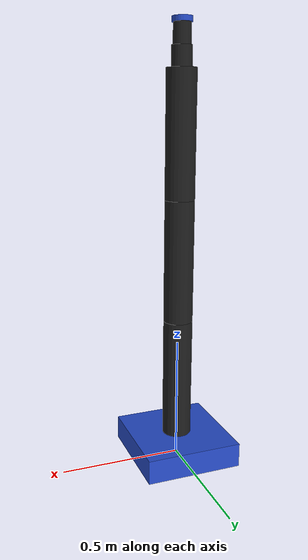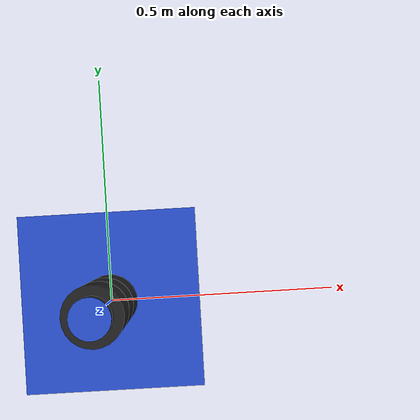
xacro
<?xml version="1.0"?>
<robot xmlns:xacro="http://www.ros.org/wiki/xacro">

    <link name="base_link">
        <visual>
            <geometry>
                <box size="0.4 0.4 0.1"/>
            </geometry>
            <origin xyz="0 0 0.05" rpy="0 0 0"/>
            <material name="blue"/>
        </visual>
        <collision>
            <geometry>
                <box size="0.4 0.4 0.1"/>
            </geometry>
            <origin xyz="0 0 0.05" rpy="0 0 0"/>
        </collision>
    </link>

    <joint name="shoulder_yaw_joint" type="revolute">
        <parent link="base_link"/>
        <child link="shoulder_link"/>
        <origin xyz="0 0 0.1" rpy="0 0 0"/>
        <axis xyz="0 0 1" />
        <limit effort="1000.0" velocity="1.0" lower="-3.14" upper="3.14"/>
    </joint>

    <link name="shoulder_link">
        <visual>
            <geometry>
                <cylinder length="0.5" radius="0.06"/>
            </geometry>
            <origin xyz="0 0 0.25" rpy="0 0 0"/>
            <material name="matte_black"/>
        </visual>
        <collision>
            <geometry>
                <cylinder length="0.5" radius="0.06"/>
            </geometry>
            <origin xyz="0 0 0.25" rpy="0 0 0"/>
        </collision>
    </link>

    <joint name="shoulder_pitch_joint" type="revolute">
        <parent link="shoulder_link"/>
        <child link="upper_arm_link"/>
        <origin xyz="0 0 0.5" rpy="0 0 0"/>
        <axis xyz="0 1 0" />
        <limit effort="1000.0" velocity="1.0" lower="-1.57" upper="1.57"/>
    </joint>

    <link name="upper_arm_link">
        <visual>
            <geometry>
                <cylinder length="0.5" radius="0.06"/>
            </geometry>
            <origin xyz="0 0 0.25" rpy="0 0 0"/>
            <material name="matte_black"/>
        </visual>
        <collision>
            <geometry>
                <cylinder length="0.5" radius="0.06"/>
            </geometry>
            <origin xyz="0 0 0.25" rpy="0 0 0"/>
        </collision>
    </link>

    <joint name="elbow_joint" type="revolute">
        <parent link="upper_arm_link"/>
        <child link="forearm_link"/>
        <origin xyz="0 0 0.5" rpy="0 0 0"/>
        <axis xyz="0 1 0" />
        <limit effort="1000.0" velocity="1.0" lower="-1.57" upper="1.57"/>
    </joint>

    <link name="forearm_link">
        <visual>
            <geometry>
                <cylinder length="0.5" radius="0.06"/>
            </geometry>
            <origin xyz="0 0 0.25" rpy="0 0 0"/>
            <material name="matte_black"/>
        </visual>
        <collision>
            <geometry>
                <cylinder length="0.5" radius="0.06"/>
            </geometry>
            <origin xyz="0 0 0.25" rpy="0 0 0"/>
        </collision>
    </link>

    <joint name="wrist_yaw_joint" type="revolute">
        <parent link="forearm_link"/>
        <child link="wrist_yaw_link"/>
        <origin xyz="0 0 0.5" rpy="0 0 0"/>
        <axis xyz="0 0 1" />
        <limit effort="100.0" velocity="2.0" lower="-3.14" upper="3.14"/>
    </joint>

    <link name="wrist_yaw_link">
        <visual>
            <geometry>
                <cylinder length="0.08" radius="0.04"/>
            </geometry>
            <origin xyz="0 0 0.04" rpy="0 0 0"/>
            <material name="matte_black"/>
        </visual>
        <collision>
            <geometry>
                <cylinder length="0.08" radius="0.04"/>
            </geometry>
            <origin xyz="0 0 0.04" rpy="0 0 0"/>
        </collision>
    </link>

    <joint name="wrist_pitch_joint" type="revolute">
        <parent link="wrist_yaw_link"/>
        <child link="wrist_pitch_link"/>
        <origin xyz="0 0 0.08" rpy="0 0 0"/>
        <axis xyz="0 1 0" />
        <limit effort="100.0" velocity="2.0" lower="-1.57" upper="1.57"/>
    </joint>

    <link name="wrist_pitch_link">
        <visual>
            <geometry>
                <cylinder length="0.08" radius="0.035"/>
            </geometry>
            <origin xyz="0 0 0.04" rpy="0 0 0"/>
            <material name="matte_black"/>
        </visual>
        <collision>
            <geometry>
                <cylinder length="0.08" radius="0.035"/>
            </geometry>
            <origin xyz="0 0 0.04" rpy="0 0 0"/>
        </collision>
    </link>

    <joint name="wrist_roll_joint" type="revolute">
        <parent link="wrist_pitch_link"/>
        <child link="tool_flange_link"/>
        <origin xyz="0 0 0.08" rpy="0 0 0"/>
        <axis xyz="1 0 0" />
        <limit effort="100.0" velocity="2.0" lower="-3.14" upper="3.14"/>
    </joint>

    <link name="tool_flange_link">
        <visual>
            <geometry>
                <cylinder length="0.02" radius="0.04"/> </geometry>
            <origin xyz="0 0 0.01" rpy="0 0 0"/> <material name="blue"/> </visual>
        <collision>
            <geometry>
                <cylinder length="0.02" radius="0.04"/> </geometry>
            <origin xyz="0 0 0.01" rpy="0 0 0"/> </collision>
    </link>

</robot>
